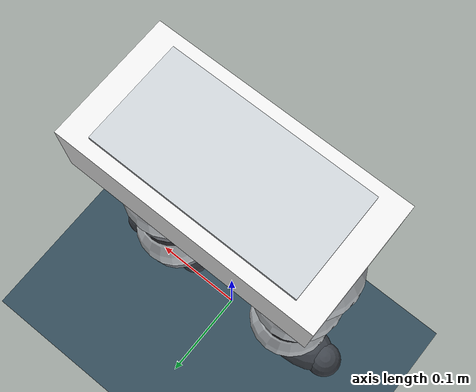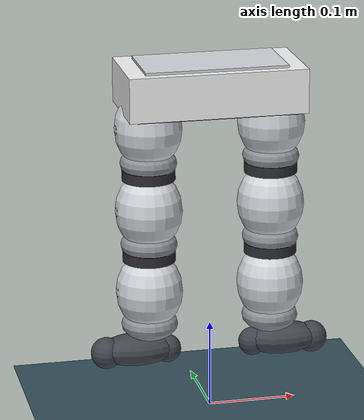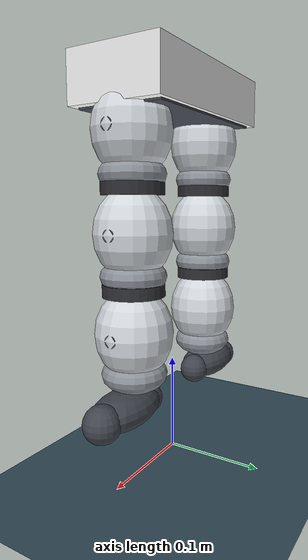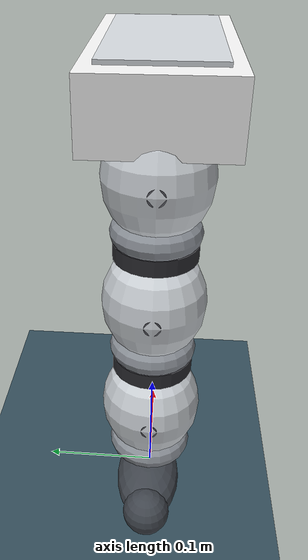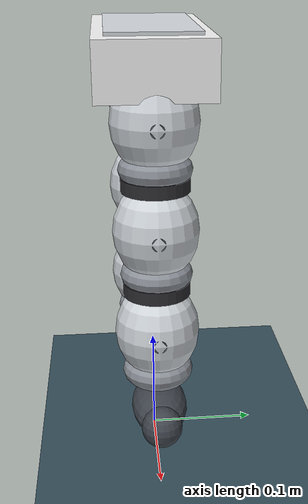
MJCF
<mujoco model="beewalker">
  <compiler angle="degree" coordinate="local" inertiafromgeom="true"/>

  <option timestep="0.002" gravity="0 0 -9.81" integrator="RK4"/>

  <visual>
    <global offwidth="800" offheight="800"/>
  </visual>

  <default>
    <joint limited="true" damping="0.5" armature="0.01"/>
    <geom contype="1" conaffinity="1" condim="3" friction="1 0.5 0.5"/>
    <motor ctrllimited="true" ctrlrange="-1 1"/>
  </default>

  <asset>
    <texture type="skybox" builtin="gradient" rgb1="0.4 0.6 0.8" rgb2="0.1 0.1 0.2" width="512" height="512"/>
    <texture type="2d" name="groundplane" builtin="checker" rgb1="0.25 0.35 0.4" rgb2="0.15 0.25 0.3" width="512" height="512"/>
    <material name="groundplane" texture="groundplane" texrepeat="10 10"/>
    <!-- Smooth plastic materials -->
    <material name="shell_white" rgba="0.95 0.95 0.95 1" specular="0.5" shininess="0.5"/>
    <material name="shell_light" rgba="0.82 0.84 0.86 1" specular="0.5" shininess="0.4"/>
    <material name="shell_mid" rgba="0.55 0.57 0.6 1" specular="0.4" shininess="0.5"/>
    <material name="shell_dark" rgba="0.25 0.27 0.3 1" specular="0.3" shininess="0.6"/>
    <material name="joint_ring" rgba="0.18 0.18 0.2 1" specular="0.2" shininess="0.8"/>
    <material name="screw_metal" rgba="0.35 0.35 0.38 1" specular="0.8" shininess="0.9"/>
  </asset>

  <worldbody>
    <!-- Ground plane -->
    <geom name="floor" type="plane" size="10 10 0.1" material="groundplane"/>
    <light directional="true" pos="1 -1 3" dir="-0.2 0.2 -1" diffuse="1 1 1"/>
    <light directional="true" pos="-1 1 2" dir="0.2 -0.2 -1" diffuse="0.5 0.5 0.5"/>

    <camera name="track" mode="trackcom" pos="0 -0.8 0.5" xyaxes="1 0 0 0 0.5 0.87"/>
    <camera name="reference" pos="0.5 -0.5 0.5" xyaxes="0.7 0.7 0 -0.3 0.3 0.9"/>

    <!-- BeeWalker Robot - Bulbous egg-shaped servo housing design -->
    <body name="torso" pos="0 0 0.38">
      <freejoint name="root"/>
      <site name="torso_site" pos="0 0 0" size="0.01"/>

      <!-- Main torso - rectangular body with rounded edges -->
      <geom name="torso_main" type="box" size="0.10 0.05 0.025" material="shell_white"/>
      <geom name="torso_accent" type="box" pos="0 0 0.018" size="0.08 0.04 0.01" material="shell_light"/>
      <!-- Bottom accent strip -->
      <geom name="torso_bottom" type="box" pos="0 0 -0.022" size="0.09 0.045 0.005" material="shell_dark"/>

      <!-- ========== RIGHT LEG ========== -->
      <!-- Hip segment - large oval/egg shaped housing -->
      <body name="right_hip" pos="0.07 0 -0.045">
        <joint name="right_hip_joint" type="hinge" axis="1 0 0" range="-90 90"/>
        <!-- Main bulbous housing - egg shape using ellipsoid -->
        <geom name="right_hip_shell_top" type="ellipsoid" pos="0 0 0" size="0.038 0.038 0.045" material="shell_light"/>
        <!-- Joint connection ring at top -->
        <geom name="right_hip_ring_top" type="cylinder" pos="0 0 0.042" size="0.03 0.006" material="joint_ring"/>
        <!-- Bottom cap for transition -->
        <geom name="right_hip_cap" type="ellipsoid" pos="0 0 -0.04" size="0.032 0.032 0.018" material="shell_mid"/>
        <!-- Screw details on side -->
        <geom name="right_hip_screw" type="cylinder" pos="0.035 0 0" size="0.006 0.002" euler="0 90 0" material="screw_metal"/>

        <!-- Thigh segment - bulbous oval -->
        <body name="right_thigh" pos="0 0 -0.095">
          <joint name="right_knee_joint" type="hinge" axis="1 0 0" range="-90 90"/>
          <geom name="right_thigh_shell" type="ellipsoid" pos="0 0 0" size="0.038 0.038 0.045" material="shell_light"/>
          <geom name="right_knee_ring_top" type="cylinder" pos="0 0 0.042" size="0.03 0.006" material="joint_ring"/>
          <geom name="right_thigh_cap" type="ellipsoid" pos="0 0 -0.04" size="0.032 0.032 0.018" material="shell_mid"/>
          <geom name="right_thigh_screw" type="cylinder" pos="0.035 0 0" size="0.006 0.002" euler="0 90 0" material="screw_metal"/>

          <!-- Shin segment - bulbous oval -->
          <body name="right_shin" pos="0 0 -0.095">
            <joint name="right_ankle_joint" type="hinge" axis="1 0 0" range="-90 90"/>
            <geom name="right_shin_shell" type="ellipsoid" pos="0 0 0" size="0.038 0.038 0.045" material="shell_light"/>
            <geom name="right_ankle_ring_top" type="cylinder" pos="0 0 0.042" size="0.03 0.006" material="joint_ring"/>
            <geom name="right_shin_cap" type="ellipsoid" pos="0 0 -0.04" size="0.032 0.032 0.018" material="shell_mid"/>
            <geom name="right_shin_screw" type="cylinder" pos="0.035 0 0" size="0.006 0.002" euler="0 90 0" material="screw_metal"/>

            <!-- Foot - curved shoe shape -->
            <geom name="right_foot_base" type="ellipsoid" pos="0.015 0 -0.07" size="0.045 0.025 0.018" material="shell_dark"/>
            <geom name="right_foot_toe" type="sphere" pos="0.05 0 -0.072" size="0.018" material="shell_dark"/>
            <geom name="right_foot_heel" type="sphere" pos="-0.02 0 -0.072" size="0.016" material="shell_dark"/>
          </body>
        </body>
      </body>

      <!-- ========== LEFT LEG ========== -->
      <body name="left_hip" pos="-0.07 0 -0.045">
        <joint name="left_hip_joint" type="hinge" axis="1 0 0" range="-90 90"/>
        <geom name="left_hip_shell_top" type="ellipsoid" pos="0 0 0" size="0.038 0.038 0.045" material="shell_light"/>
        <geom name="left_hip_ring_top" type="cylinder" pos="0 0 0.042" size="0.03 0.006" material="joint_ring"/>
        <geom name="left_hip_cap" type="ellipsoid" pos="0 0 -0.04" size="0.032 0.032 0.018" material="shell_mid"/>
        <geom name="left_hip_screw" type="cylinder" pos="-0.035 0 0" size="0.006 0.002" euler="0 90 0" material="screw_metal"/>

        <body name="left_thigh" pos="0 0 -0.095">
          <joint name="left_knee_joint" type="hinge" axis="1 0 0" range="-90 90"/>
          <geom name="left_thigh_shell" type="ellipsoid" pos="0 0 0" size="0.038 0.038 0.045" material="shell_light"/>
          <geom name="left_knee_ring_top" type="cylinder" pos="0 0 0.042" size="0.03 0.006" material="joint_ring"/>
          <geom name="left_thigh_cap" type="ellipsoid" pos="0 0 -0.04" size="0.032 0.032 0.018" material="shell_mid"/>
          <geom name="left_thigh_screw" type="cylinder" pos="-0.035 0 0" size="0.006 0.002" euler="0 90 0" material="screw_metal"/>

          <body name="left_shin" pos="0 0 -0.095">
            <joint name="left_ankle_joint" type="hinge" axis="1 0 0" range="-90 90"/>
            <geom name="left_shin_shell" type="ellipsoid" pos="0 0 0" size="0.038 0.038 0.045" material="shell_light"/>
            <geom name="left_ankle_ring_top" type="cylinder" pos="0 0 0.042" size="0.03 0.006" material="joint_ring"/>
            <geom name="left_shin_cap" type="ellipsoid" pos="0 0 -0.04" size="0.032 0.032 0.018" material="shell_mid"/>
            <geom name="left_shin_screw" type="cylinder" pos="-0.035 0 0" size="0.006 0.002" euler="0 90 0" material="screw_metal"/>

            <!-- Foot -->
            <geom name="left_foot_base" type="ellipsoid" pos="-0.015 0 -0.07" size="0.045 0.025 0.018" material="shell_dark"/>
            <geom name="left_foot_toe" type="sphere" pos="-0.05 0 -0.072" size="0.018" material="shell_dark"/>
            <geom name="left_foot_heel" type="sphere" pos="0.02 0 -0.072" size="0.016" material="shell_dark"/>
          </body>
        </body>
      </body>
    </body>
  </worldbody>

  <actuator>
    <motor name="right_hip_motor" joint="right_hip_joint" gear="50"/>
    <motor name="right_knee_motor" joint="right_knee_joint" gear="50"/>
    <motor name="right_ankle_motor" joint="right_ankle_joint" gear="50"/>
    <motor name="left_hip_motor" joint="left_hip_joint" gear="50"/>
    <motor name="left_knee_motor" joint="left_knee_joint" gear="50"/>
    <motor name="left_ankle_motor" joint="left_ankle_joint" gear="50"/>
  </actuator>

  <sensor>
    <accelerometer name="torso_accel" site="torso_site"/>
    <gyro name="torso_gyro" site="torso_site"/>
  </sensor>
</mujoco>
